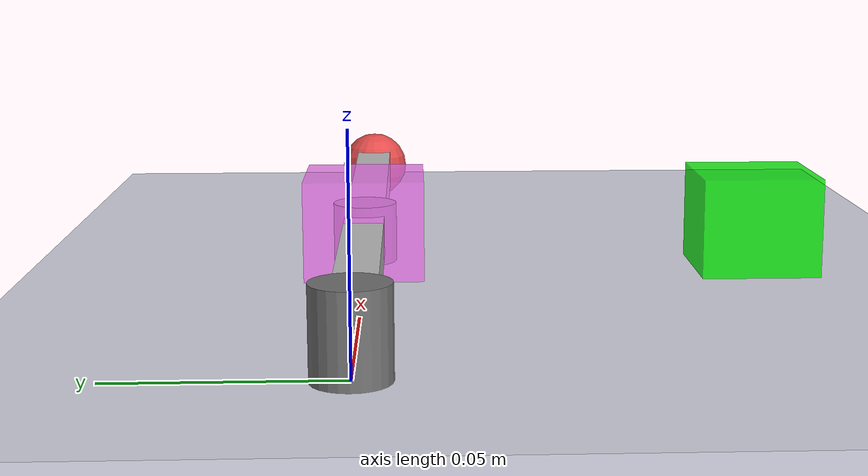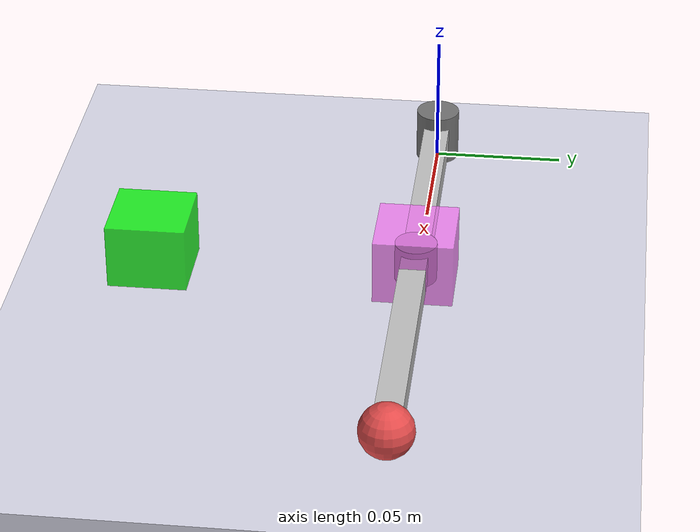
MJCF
<mujoco model="reacher">
	<compiler angle="radian" inertiafromgeom="true"/>
	<default>
		<joint armature="1" damping="1" limited="true"/>
		<geom contype="0" friction="1 0.1 0.1" rgba="0.7 0.7 0 1"/>
	</default>
	<option gravity="0 0 -9.81" integrator="RK4" timestep="0.01"/>
	<asset>
		<texture type="skybox" builtin="gradient" rgb1="0.9 0.7 0.9" rgb2="0.94 0.97 0.97" width="2" height="2"/>
	</asset>
	<worldbody>
		<!-- Arena -->
		<include file="lighting.xml"/>
		<geom conaffinity="0" contype="0" name="ground" pos="0 0 -0.02" rgba="0.85 0.85 0.91 1" size="0.3 0.3 0.02"
			  type="box"/>
		<!-- Arm -->
		<include file="2-link-arm.xml"/>
		<!-- Target -->
		<body name="target_0" pos=".1 -.1 .01">
			<joint armature="0" axis="1 0 0" damping="0.5" limited="true" name="target_x_0" pos="0 0 0" range="-.27 .27"
				   ref=".1" stiffness="0" type="slide"/>
			<joint armature="0" axis="0 1 0" damping="0.5" limited="true" name="target_y_0" pos="0 0 0" range="-.27 .27"
				   ref="-.1" stiffness="0" type="slide"/>
			<geom name="target_0" type="box" pos="0 0.1 0" size="0.015 0.015 0.015" rgba="2 0.5 1 0.8" contype="0"
				  conaffinity="0"/>
		</body>
		<body name="target_1" pos=".1 -.1 .01">
			<joint armature="0" axis="1 0 0" damping="0.5" limited="true" name="target_x_1" pos="0 0 0" range="-.27 .27"
				   ref=".1" stiffness="0" type="slide"/>
			<joint armature="0" axis="0 1 0" damping="0.5" limited="true" name="target_y_1" pos="0 0 0" range="-.27 .27"
				   ref="-.1" stiffness="0" type="slide"/>
			<geom name="target_1" type="box" pos="0 0 0" size="0.015 0.015 0.015" rgba="0 1 0 0.8" contype="0"
				  conaffinity="0"/>
		</body>
		<body name="target_2" pos=".1 -.1 .01">
			<joint armature="0" axis="1 0 0" damping="0.5" limited="true" name="target_x_2" pos="0 0 0" range="-.27 .27"
				   ref=".1" stiffness="0" type="slide"/>
			<joint armature="0" axis="0 1 0" damping="0.5" limited="true" name="target_y_2" pos="0 0 0" range="-.27 .27"
				   ref="-.1" stiffness="0" type="slide"/>
			<geom name="target_2" type="box" pos="0 0 0" size="0.015 0.015 0.015" rgba="0 0 1 0.8" contype="0"
				  conaffinity="0"/>
		</body>
		<body name="target_3" pos=".1 -.1 .01">
			<joint armature="0" axis="1 0 0" damping="0.5" limited="true" name="target_x_3" pos="0 0 0" range="-.27 .27"
				   ref=".1" stiffness="0" type="slide"/>
			<joint armature="0" axis="0 1 0" damping="0.5" limited="true" name="target_y_3" pos="0 0 0" range="-.27 .27"
				   ref="-.1" stiffness="0" type="slide"/>
			<geom name="target_3" type="box" pos="0 0 0" size="0.015 0.015 0.015" rgba="0.3 0.5 0 0.8" contype="0"
				  conaffinity="0"/>
		</body>
	</worldbody>
	<actuator>
		<motor ctrllimited="true" ctrlrange="-1.0 1.0" gear="200.0" joint="joint0"/>
		<motor ctrllimited="true" ctrlrange="-1.0 1.0" gear="200.0" joint="joint1"/>
	</actuator>
</mujoco>

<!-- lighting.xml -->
<mujoco>
    <light directional="true" ambient="0.2 0.2 0.2" diffuse="0.8 0.8 0.8" specular="0.3 0.3 0.3"
           castshadow="false" pos="0.9 0.6 3" dir="-0.5 -0.5 -0.7" name="light0"/>
</mujoco>

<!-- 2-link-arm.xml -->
<mujoco>
    <geom conaffinity="0" contype="0" fromto="0 0 0 0 0 0.02" name="root" rgba="0.45 0.45 0.45 1" size=".0085"
          type="cylinder"/>
    <body name="body0" pos="0 0 .01">
        <geom name="link0" type="box" pos="0.055 0 0" size="0.05 0.005 0.005" rgba="0.75 0.75 0.75 1"/>
        <joint axis="0 0 1" limited="false" name="joint0" pos="0 0 0" type="hinge"/>
        <body name="body1" pos="0.1 0 0">
            <geom conaffinity="0" contype="0" fromto="0 0 -0.0075 0 0 0.0075" name="elbow" rgba="0.45 0.45 0.45 1" size=".008"
                  type="cylinder"/>
            <geom name="link1" type="box" pos="0.055 0 0" size="0.05 0.005 0.005" rgba="0.75 0.75 0.75 1"/>
            <joint axis="0 0 1" limited="true" name="joint1" pos="0 0 0" range="-3.0 3.0" type="hinge"/>
            <body name="fingertip" pos="0.11 0 0">
                <geom contype="0" name="fingertip" pos="0 0 0" rgba="0.9 0.3 0.3 1" size=".01" type="sphere"/>
            </body>
        </body>
    </body>
</mujoco>
